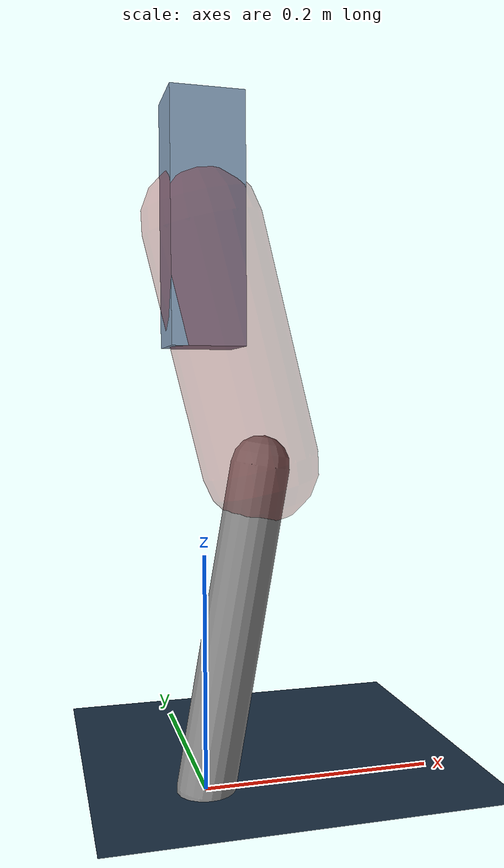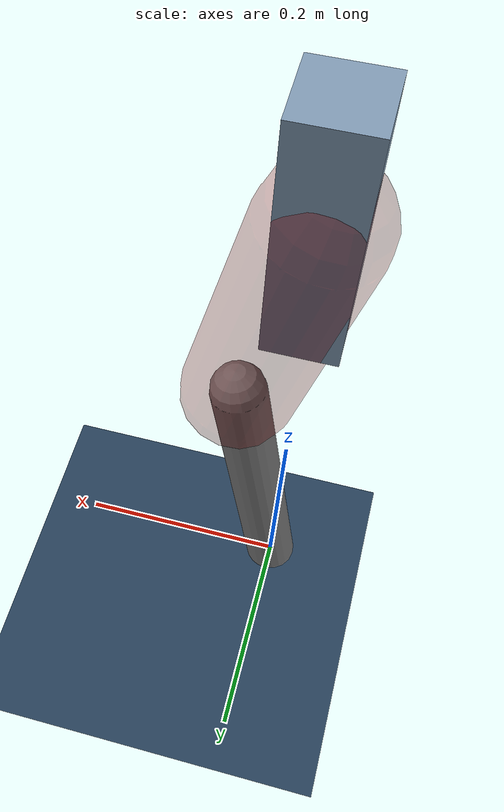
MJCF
<mujoco model="Hopper2D">
	<compiler inertiafromgeom="true" angle="radian" />
	<option timestep="0.001" integrator="implicit" cone="elliptic" solver="Newton" tolerance="1e-10" />

	<default>
		<geom contype="1" conaffinity="1" condim="3" friction="2 0.005 0.0001" solref="0.005 1" />
		<joint limited="true" damping="0.1" />
	</default>

	<asset>
		<texture name="skybox" type="skybox" builtin="gradient" rgb1=".4 .6 .8" rgb2="0 0 0" width="800" height="800" />
		<texture name="grid" type="2d" builtin="checker" rgb1=".1 .2 .3" rgb2=".2 .3 .4" width="300" height="300" mark="edge" markrgb=".2 .3 .4" />
		<material name="ground" texture="grid" texrepeat="1 1" texuniform="true" reflectance="0.1" />
		<material name="leg" rgba="0.5 0.6 0.7 1" />
	</asset>

	<worldbody>

		<geom name="floor" type="plane" size="5 5 0.25" material="ground" />

		<light directional="false" diffuse="0.8 0.8 0.8" specular="0.3 0.3 0.3" pos="0 0 2" dir="0 0 -1" />
		<light mode="targetbodycom" target="base" directional="false" diffuse="0.8 0.8 0.8" specular="0.3 0.3 0.3" pos="0 0 2" dir="0 0 -1" />

		<camera name="fixed" pos="0 -2 1" xyaxes="1 0 0 0 0 1" />
		<camera name="tracking" mode="trackcom" pos="0 -3 1" />

		<body name="root" pos="0 0 0.4723250315400003">
			<joint name="slide_x" type="slide" axis="1 0 0" range="-100 100" />
			<joint name="slide_z" type="slide" axis="0 0 1" range="0 10" />

			<body name="base" pos="0 0 0">
				<geom name="torso" type="box" size="0.03 0.03 0.1" mass="3.3360000000000003" material="leg" />

				<body name="link1" pos="0 0 0" euler="0 1.331198000624923 0">
					<joint type="hinge" axis="0 -1 0" pos="0 0 0" name="hinge1" limited="true" range="-3.14 3.14" stiffness="0" damping="0.1" />
					<geom name="thigh" type="capsule" fromto="0 0 0 0.20317987470504886 0 0" size="0.05" rgba="0.5 0 0 0.3" mass="0.7375496867626221" />

					<body name="link2" pos="0.20317987470504886 0 0" euler="0 0.4132003320631874 0">
						<joint type="hinge" axis="0 -1 0" pos="0 0 0" name="hinge2" limited="true" range="-3.14 3.14" stiffness="0" damping="0.1" />
						<geom name="shank" type="capsule" fromto="0 0 0 0.27914515683495145 0 0" size="0.025" mass="0.46641612546796113" />

					</body>
				</body>
			</body>
		</body>
	</worldbody>

	<actuator>
		<motor name="torque1" joint="hinge1" ctrlrange="-148.64143625746516 148.64143625746516" ctrllimited="true" gear="1" />
		<motor name="torque2" joint="hinge2" ctrlrange="-41.612084088554624 41.612084088554624" ctrllimited="true" gear="1" />
	</actuator>
</mujoco>
